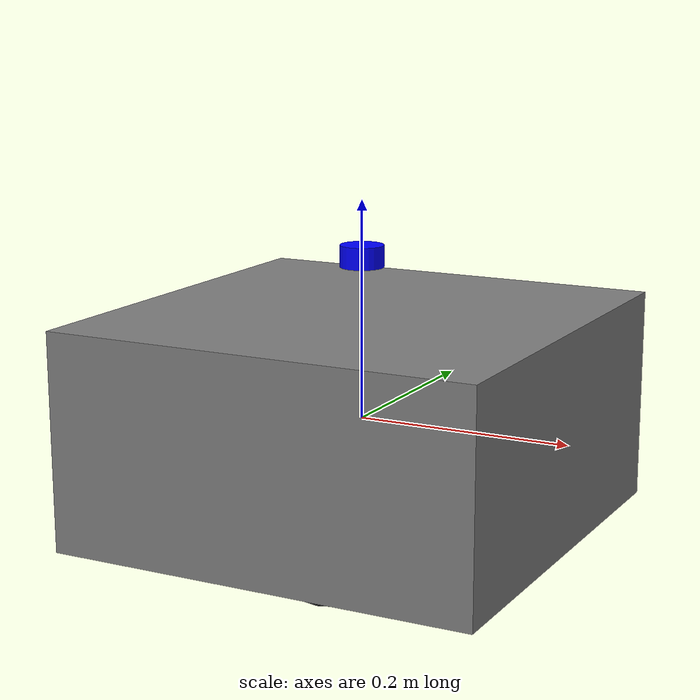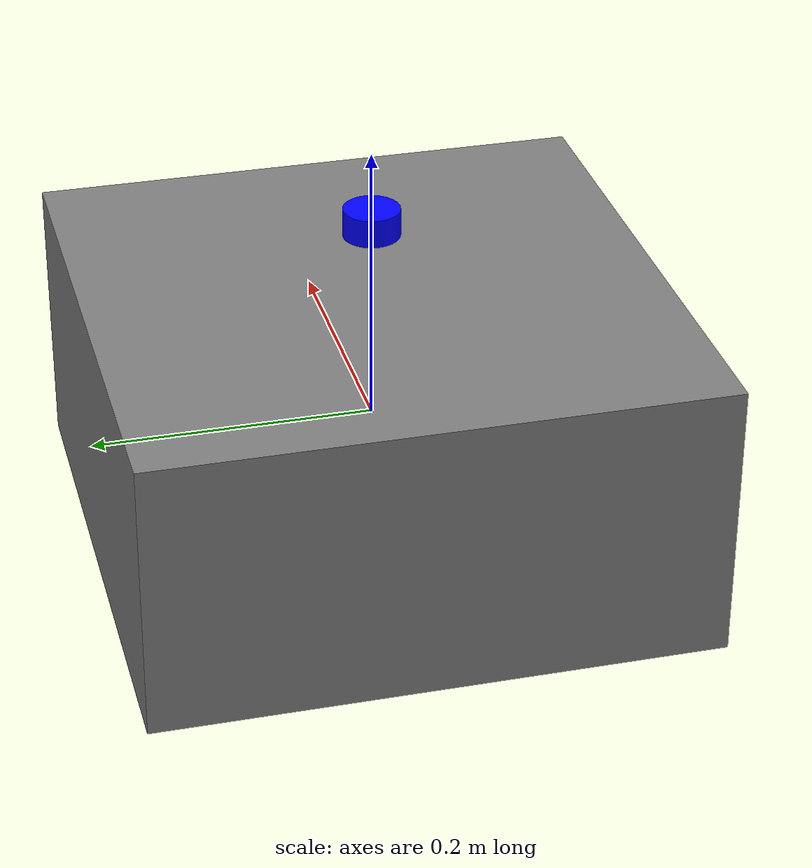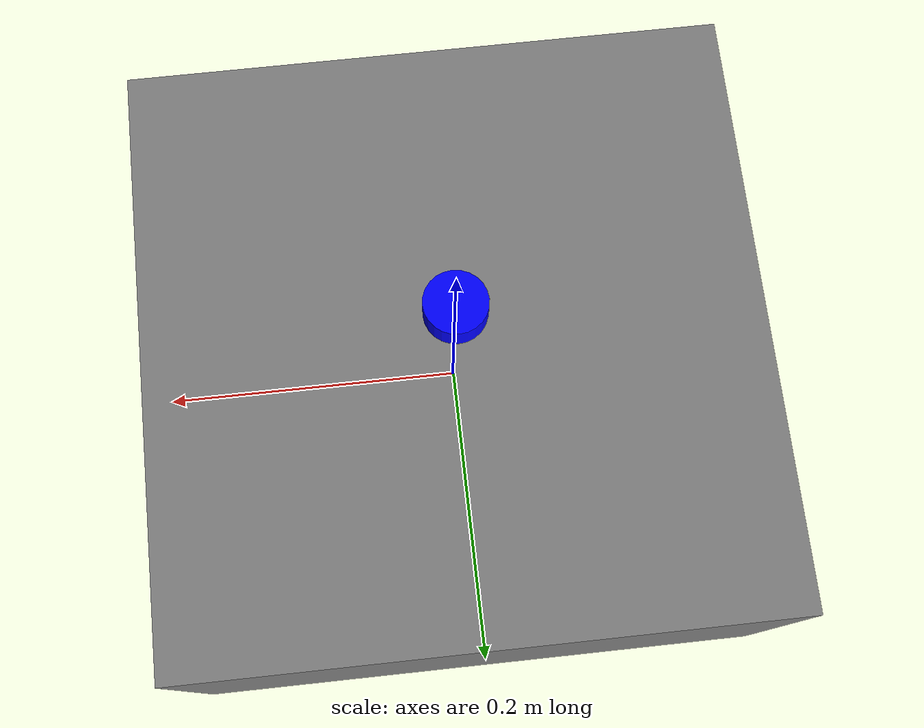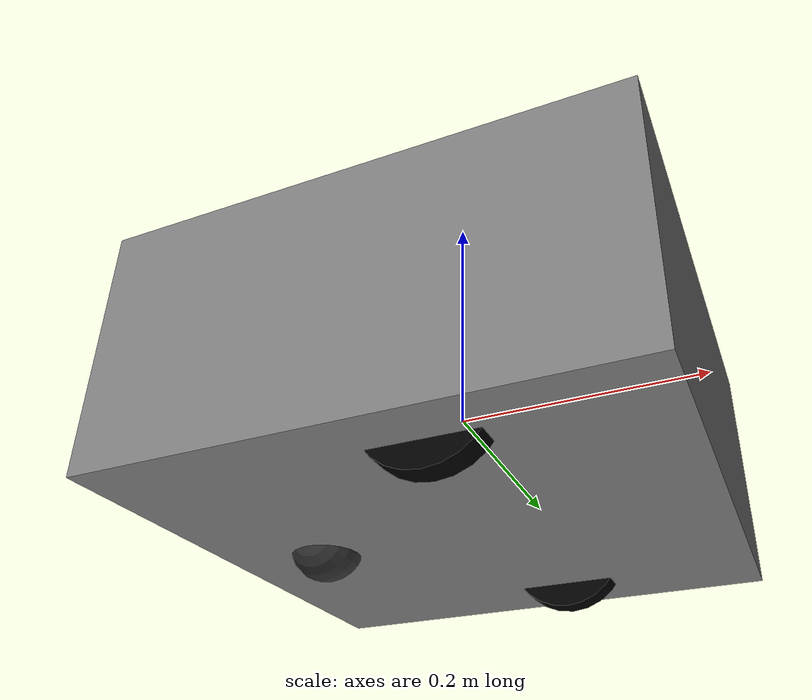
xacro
<?xml version="1.0"?>
<robot name="$(arg robot_name)" xmlns:xacro="http://ros.org/wiki/xacro">
  <xacro:arg name="robot_name" default="my_robot"/>

  <link name="base_link">
    <visual>
      <geometry><box size="0.4 0.4 0.2"/></geometry>
      <material name="gray"><color rgba="0.5 0.5 0.5 1"/></material>
    </visual>
    <collision>
      <geometry><box size="0.4 0.4 0.2"/></geometry>
    </collision>
    <inertial>
      <origin xyz="0 0 0" rpy="0 0 0"/>
      <mass value="5.0"/>
      <inertia ixx="0.1" iyy="0.1" izz="0.1" ixy="0" ixz="0" iyz="0"/>
    </inertial>
  </link>

  <xacro:macro name="wheel" params="name y_pos">
    <link name="${name}">
      <visual>
        <origin rpy="1.5708 1.5708 0"/>
        <geometry><cylinder radius="0.05" length="0.02"/></geometry>
        <material name="black"><color rgba="0 0 0 1"/></material>
      </visual>
      <collision>
        <origin rpy="1.5708 1.5708 0"/>
        <geometry><cylinder radius="0.05" length="0.02"/></geometry>

      </collision>
      <inertial>
        <mass value="0.2"/>
        <inertia ixx="0.001" iyy="0.001" izz="0.001" ixy="0" ixz="0" iyz="0"/>
      </inertial>
    </link>

    <joint name="${name}_joint" type="continuous">
      <parent link="base_link"/>
      <child link="${name}"/>
      <origin xyz="0.04 ${y_pos} -0.07"/>
      <axis xyz="0 1 0"/>
    </joint>

    <transmission name="${name}_trans">
      <type>transmission_interface/SimpleTransmission</type>
      <joint name="${name}_joint">
        <hardwareInterface>hardware_interface/EffortJointInterface</hardwareInterface>
      </joint>
      <actuator name="${name}_motor">
        <hardwareInterface>hardware_interface/EffortJointInterface</hardwareInterface>
        <mechanicalReduction>1</mechanicalReduction>
      </actuator>
    </transmission>
  </xacro:macro>

  <xacro:wheel name="left_wheel" y_pos="0.15"/>
  <xacro:wheel name="right_wheel" y_pos="-0.15"/>

  <xacro:macro name="caster_wheel" params="name x_pos y_pos">
    <link name="${name}">
      <visual>
        <origin rpy="1.5708 1.5708 0"/>
        <geometry><sphere radius="0.03"/></geometry>
        <material name="black"><color rgba="0.2 0.2 0.2 1"/></material>
      </visual>
      <collision>
        <origin rpy="1.5708 1.5708 0"/>
        <geometry><sphere radius="0.03"/></geometry>
      </collision>
      <inertial>
        <mass value="0.05"/> <inertia ixx="0.00001" iyy="0.00001" izz="0.00001" ixy="0" ixz="0" iyz="0"/>
      </inertial>
    </link>

    <joint name="${name}_joint" type="continuous">
      <parent link="base_link"/>
      <child link="${name}"/>
      <origin xyz="${x_pos} ${y_pos} -0.09"/>
      <axis xyz="0 1 1"/>
    </joint>

    <gazebo reference="${name}">
      <kp>1000000.0</kp>
      <kd>100.0</kd>
      <mu1>0.01</mu1> <mu2>0.01</mu2>
      <fdir1>0 0 1</fdir1>
      <maxVel>0.1</maxVel>
      <minDepth>0.001</minDepth>
      <selfCollide>false</selfCollide>
    </gazebo>
  </xacro:macro>

  <xacro:caster_wheel name="back_caster" x_pos="-0.12" y_pos="0"/>

  <link name="laser_link">
    <visual>
      <geometry><cylinder radius="0.02" length="0.02"/></geometry>
      <material name="blue"><color rgba="0 0 1 1"/></material>
    </visual>
    <collision><geometry><cylinder radius="0.02" length="0.02"/></geometry></collision>
    <inertial>
      <mass value="0.1"/>
      <inertia ixx="0.001" iyy="0.001" izz="0.001" ixy="0.0" ixz="0.0" iyz="0.0"/>
    </inertial>
  </link>

  <joint name="laser_joint" type="fixed">
    <parent link="base_link"/>
    <child link="laser_link"/>
    <origin xyz="0 0 0.15"/>
  </joint>

  <gazebo reference="laser_link">
    <sensor type="ray" name="laser">
      <update_rate>10.0</update_rate>
      <ray>
        <scan>
          <horizontal>
            <samples>360</samples>
            <min_angle>-1.57</min_angle>
            <max_angle>1.57</max_angle>
          </horizontal>
        </scan>
        <range><min>0.12</min><max>10.0</max></range>
      </ray>
      <plugin name="gazebo_ros_laser" filename="libgazebo_ros_laser.so">
        <topicName>scan</topicName>
        <frameName>laser_link</frameName>
      </plugin>
    </sensor>
  </gazebo>

  <gazebo>
    <plugin name="gazebo_ros_control" filename="libgazebo_ros_control.so">
      <robotNamespace>$(arg robot_name)</robotNamespace>
    </plugin>
  </gazebo>

  <gazebo>
    <plugin name="diff_drive_controller" filename="libgazebo_ros_diff_drive.so">
      <leftJoint>left_wheel_joint</leftJoint>
      <rightJoint>right_wheel_joint</rightJoint>
      <wheelSeparation>0.3</wheelSeparation>
      <wheelDiameter>0.1</wheelDiameter>
      <torque>5</torque>
      <commandTopic>cmd_vel</commandTopic>
      <odometryTopic>odom</odometryTopic>
      <odometryFrame>odom</odometryFrame>
      <robotBaseFrame>base_link</robotBaseFrame>
      <publishTf>true</publishTf>
    </plugin>
  </gazebo>

</robot>
